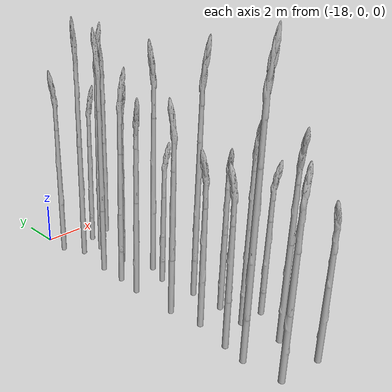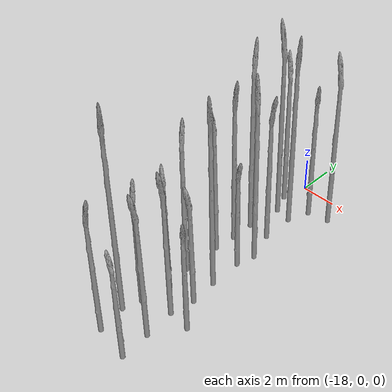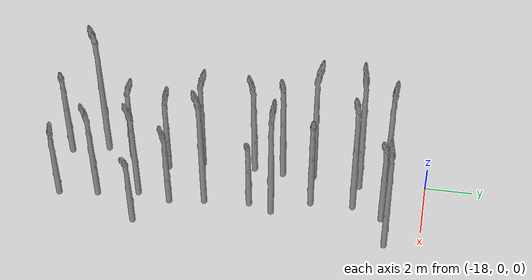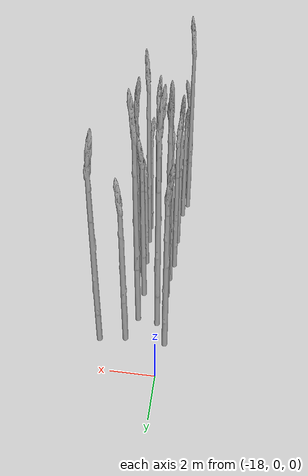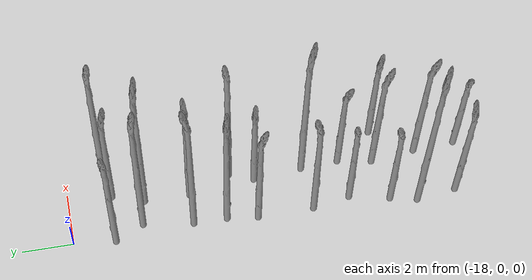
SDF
<sdf version="1.6">
 <world name="default">
  <model name="asparagus_0">
   <pose>-18.0552 -14.9178 0 0 -0 0.13906</pose>
   <static>1</static>
   <link name="asparagus_0">
    <visual name="visual">
     <geometry>
      <mesh><uri>model://Asparagus/meshes/asparagus.obj</uri><scale>0.3 0.3 0.403627</scale></mesh>
     </geometry>
    </visual>
    <collision name="collision">
     <geometry>
      <mesh><uri>model://Asparagus/meshes/asparagus.obj</uri><scale>0.3 0.3 0.403627</scale></mesh>
     </geometry>
    </collision>
   </link>
  </model>
  <model name="asparagus_3">
   <pose>-18.2997 -13.439 0 0 -0 -0.580635</pose>
   <static>1</static>
   <link name="asparagus_3">
    <visual name="visual">
     <geometry>
      <mesh><uri>model://Asparagus/meshes/asparagus.obj</uri><scale>0.3 0.3 0.595077</scale></mesh>
     </geometry>
    </visual>
    <collision name="collision">
     <geometry>
      <mesh><uri>model://Asparagus/meshes/asparagus.obj</uri><scale>0.3 0.3 0.595077</scale></mesh>
     </geometry>
    </collision>
   </link>
  </model>
  <model name="asparagus_6">
   <pose>-18.1559 -12.2868 0 0 -0 2.11804</pose>
   <static>1</static>
   <link name="asparagus_6">
    <visual name="visual">
     <geometry>
      <mesh><uri>model://Asparagus/meshes/asparagus.obj</uri><scale>0.3 0.3 0.370765</scale></mesh>
     </geometry>
    </visual>
    <collision name="collision">
     <geometry>
      <mesh><uri>model://Asparagus/meshes/asparagus.obj</uri><scale>0.3 0.3 0.370765</scale></mesh>
     </geometry>
    </collision>
   </link>
  </model>
  <model name="asparagus_9">
   <pose>-17.8685 -10.7495 0 0 -0 2.59011</pose>
   <static>1</static>
   <link name="asparagus_9">
    <visual name="visual">
     <geometry>
      <mesh><uri>model://Asparagus/meshes/asparagus.obj</uri><scale>0.3 0.3 0.375112</scale></mesh>
     </geometry>
    </visual>
    <collision name="collision">
     <geometry>
      <mesh><uri>model://Asparagus/meshes/asparagus.obj</uri><scale>0.3 0.3 0.375112</scale></mesh>
     </geometry>
    </collision>
   </link>
  </model>
  <model name="asparagus_12">
   <pose>-18.0938 -9.28618 0 0 -0 1.98206</pose>
   <static>1</static>
   <link name="asparagus_12">
    <visual name="visual">
     <geometry>
      <mesh><uri>model://Asparagus/meshes/asparagus.obj</uri><scale>0.3 0.3 0.453931</scale></mesh>
     </geometry>
    </visual>
    <collision name="collision">
     <geometry>
      <mesh><uri>model://Asparagus/meshes/asparagus.obj</uri><scale>0.3 0.3 0.453931</scale></mesh>
     </geometry>
    </collision>
   </link>
  </model>
  <model name="asparagus_15">
   <pose>-18.1342 -7.25989 0 0 -0 -2.06988</pose>
   <static>1</static>
   <link name="asparagus_15">
    <visual name="visual">
     <geometry>
      <mesh><uri>model://Asparagus/meshes/asparagus.obj</uri><scale>0.3 0.3 0.440702</scale></mesh>
     </geometry>
    </visual>
    <collision name="collision">
     <geometry>
      <mesh><uri>model://Asparagus/meshes/asparagus.obj</uri><scale>0.3 0.3 0.440702</scale></mesh>
     </geometry>
    </collision>
   </link>
  </model>
  <model name="asparagus_18">
   <pose>-17.8814 -6.02138 0 0 -0 -0.277155</pose>
   <static>1</static>
   <link name="asparagus_18">
    <visual name="visual">
     <geometry>
      <mesh><uri>model://Asparagus/meshes/asparagus.obj</uri><scale>0.3 0.3 0.48757</scale></mesh>
     </geometry>
    </visual>
    <collision name="collision">
     <geometry>
      <mesh><uri>model://Asparagus/meshes/asparagus.obj</uri><scale>0.3 0.3 0.48757</scale></mesh>
     </geometry>
    </collision>
   </link>
  </model>
  <model name="asparagus_21">
   <pose>-17.9789 -4.61451 0 0 -0 1.82332</pose>
   <static>1</static>
   <link name="asparagus_21">
    <visual name="visual">
     <geometry>
      <mesh><uri>model://Asparagus/meshes/asparagus.obj</uri><scale>0.3 0.3 0.558133</scale></mesh>
     </geometry>
    </visual>
    <collision name="collision">
     <geometry>
      <mesh><uri>model://Asparagus/meshes/asparagus.obj</uri><scale>0.3 0.3 0.558133</scale></mesh>
     </geometry>
    </collision>
   </link>
  </model>
  <model name="asparagus_24">
   <pose>-17.7862 -2.78715 0 0 -0 -2.65873</pose>
   <static>1</static>
   <link name="asparagus_24">
    <visual name="visual">
     <geometry>
      <mesh><uri>model://Asparagus/meshes/asparagus.obj</uri><scale>0.3 0.3 0.575133</scale></mesh>
     </geometry>
    </visual>
    <collision name="collision">
     <geometry>
      <mesh><uri>model://Asparagus/meshes/asparagus.obj</uri><scale>0.3 0.3 0.575133</scale></mesh>
     </geometry>
    </collision>
   </link>
  </model>
  <model name="asparagus_27">
   <pose>-18.2786 -1.60323 0 0 -0 2.78824</pose>
   <static>1</static>
   <link name="asparagus_27">
    <visual name="visual">
     <geometry>
      <mesh><uri>model://Asparagus/meshes/asparagus.obj</uri><scale>0.3 0.3 0.458468</scale></mesh>
     </geometry>
    </visual>
    <collision name="collision">
     <geometry>
      <mesh><uri>model://Asparagus/meshes/asparagus.obj</uri><scale>0.3 0.3 0.458468</scale></mesh>
     </geometry>
    </collision>
   </link>
  </model>
  <model name="asparagus_60">
   <pose>-16.2742 -15.2325 0 0 -0 3.12725</pose>
   <static>1</static>
   <link name="asparagus_60">
    <visual name="visual">
     <geometry>
      <mesh><uri>model://Asparagus/meshes/asparagus.obj</uri><scale>0.3 0.3 0.32586</scale></mesh>
     </geometry>
    </visual>
    <collision name="collision">
     <geometry>
      <mesh><uri>model://Asparagus/meshes/asparagus.obj</uri><scale>0.3 0.3 0.32586</scale></mesh>
     </geometry>
    </collision>
   </link>
  </model>
  <model name="asparagus_63">
   <pose>-16.3407 -13.704 0 0 -0 -1.90725</pose>
   <static>1</static>
   <link name="asparagus_63">
    <visual name="visual">
     <geometry>
      <mesh><uri>model://Asparagus/meshes/asparagus.obj</uri><scale>0.3 0.3 0.430193</scale></mesh>
     </geometry>
    </visual>
    <collision name="collision">
     <geometry>
      <mesh><uri>model://Asparagus/meshes/asparagus.obj</uri><scale>0.3 0.3 0.430193</scale></mesh>
     </geometry>
    </collision>
   </link>
  </model>
  <model name="asparagus_66">
   <pose>-16.5134 -12.005 0 0 -0 -1.66874</pose>
   <static>1</static>
   <link name="asparagus_66">
    <visual name="visual">
     <geometry>
      <mesh><uri>model://Asparagus/meshes/asparagus.obj</uri><scale>0.3 0.3 0.435638</scale></mesh>
     </geometry>
    </visual>
    <collision name="collision">
     <geometry>
      <mesh><uri>model://Asparagus/meshes/asparagus.obj</uri><scale>0.3 0.3 0.435638</scale></mesh>
     </geometry>
    </collision>
   </link>
  </model>
  <model name="asparagus_69">
   <pose>-16.3248 -10.6744 0 0 -0 -2.16987</pose>
   <static>1</static>
   <link name="asparagus_69">
    <visual name="visual">
     <geometry>
      <mesh><uri>model://Asparagus/meshes/asparagus.obj</uri><scale>0.3 0.3 0.360702</scale></mesh>
     </geometry>
    </visual>
    <collision name="collision">
     <geometry>
      <mesh><uri>model://Asparagus/meshes/asparagus.obj</uri><scale>0.3 0.3 0.360702</scale></mesh>
     </geometry>
    </collision>
   </link>
  </model>
  <model name="asparagus_72">
   <pose>-16.3416 -9.21531 0 0 -0 -0.946545</pose>
   <static>1</static>
   <link name="asparagus_72">
    <visual name="visual">
     <geometry>
      <mesh><uri>model://Asparagus/meshes/asparagus.obj</uri><scale>0.3 0.3 0.556516</scale></mesh>
     </geometry>
    </visual>
    <collision name="collision">
     <geometry>
      <mesh><uri>model://Asparagus/meshes/asparagus.obj</uri><scale>0.3 0.3 0.556516</scale></mesh>
     </geometry>
    </collision>
   </link>
  </model>
  <model name="asparagus_75">
   <pose>-16.4294 -7.29622 0 0 -0 -0.224555</pose>
   <static>1</static>
   <link name="asparagus_75">
    <visual name="visual">
     <geometry>
      <mesh><uri>model://Asparagus/meshes/asparagus.obj</uri><scale>0.3 0.3 0.332964</scale></mesh>
     </geometry>
    </visual>
    <collision name="collision">
     <geometry>
      <mesh><uri>model://Asparagus/meshes/asparagus.obj</uri><scale>0.3 0.3 0.332964</scale></mesh>
     </geometry>
    </collision>
   </link>
  </model>
  <model name="asparagus_78">
   <pose>-16.2662 -6.27135 0 0 -0 2.59858</pose>
   <static>1</static>
   <link name="asparagus_78">
    <visual name="visual">
     <geometry>
      <mesh><uri>model://Asparagus/meshes/asparagus.obj</uri><scale>0.3 0.3 0.536718</scale></mesh>
     </geometry>
    </visual>
    <collision name="collision">
     <geometry>
      <mesh><uri>model://Asparagus/meshes/asparagus.obj</uri><scale>0.3 0.3 0.536718</scale></mesh>
     </geometry>
    </collision>
   </link>
  </model>
  <model name="asparagus_81">
   <pose>-16.6869 -4.70483 0 0 -0 0.158416</pose>
   <static>1</static>
   <link name="asparagus_81">
    <visual name="visual">
     <geometry>
      <mesh><uri>model://Asparagus/meshes/asparagus.obj</uri><scale>0.3 0.3 0.442158</scale></mesh>
     </geometry>
    </visual>
    <collision name="collision">
     <geometry>
      <mesh><uri>model://Asparagus/meshes/asparagus.obj</uri><scale>0.3 0.3 0.442158</scale></mesh>
     </geometry>
    </collision>
   </link>
  </model>
  <model name="asparagus_84">
   <pose>-16.7013 -2.99429 0 0 -0 -0.573025</pose>
   <static>1</static>
   <link name="asparagus_84">
    <visual name="visual">
     <geometry>
      <mesh><uri>model://Asparagus/meshes/asparagus.obj</uri><scale>0.3 0.3 0.560899</scale></mesh>
     </geometry>
    </visual>
    <collision name="collision">
     <geometry>
      <mesh><uri>model://Asparagus/meshes/asparagus.obj</uri><scale>0.3 0.3 0.560899</scale></mesh>
     </geometry>
    </collision>
   </link>
  </model>
  <model name="asparagus_87">
   <pose>-16.3148 -1.77834 0 0 -0 -0.737305</pose>
   <static>1</static>
   <link name="asparagus_87">
    <visual name="visual">
     <geometry>
      <mesh><uri>model://Asparagus/meshes/asparagus.obj</uri><scale>0.3 0.3 0.413197</scale></mesh>
     </geometry>
    </visual>
    <collision name="collision">
     <geometry>
      <mesh><uri>model://Asparagus/meshes/asparagus.obj</uri><scale>0.3 0.3 0.413197</scale></mesh>
     </geometry>
    </collision>
   </link>
  </model>
  <model name="asparagus_126">
   <pose>-15.2054 -12.0907 0 0 -0 -0.717515</pose>
   <static>1</static>
   <link name="asparagus_126">
    <visual name="visual">
     <geometry>
      <mesh><uri>model://Asparagus/meshes/asparagus.obj</uri><scale>0.3 0.3 0.339727</scale></mesh>
     </geometry>
    </visual>
    <collision name="collision">
     <geometry>
      <mesh><uri>model://Asparagus/meshes/asparagus.obj</uri><scale>0.3 0.3 0.339727</scale></mesh>
     </geometry>
    </collision>
   </link>
  </model>
  <model name="asparagus_147">
   <pose>-15.2796 -1.52192 0 0 -0 -2.75628</pose>
   <static>1</static>
   <link name="asparagus_147">
    <visual name="visual">
     <geometry>
      <mesh><uri>model://Asparagus/meshes/asparagus.obj</uri><scale>0.3 0.3 0.513384</scale></mesh>
     </geometry>
    </visual>
    <collision name="collision">
     <geometry>
      <mesh><uri>model://Asparagus/meshes/asparagus.obj</uri><scale>0.3 0.3 0.513384</scale></mesh>
     </geometry>
    </collision>
   </link>
  </model>
 </world>
</sdf>
